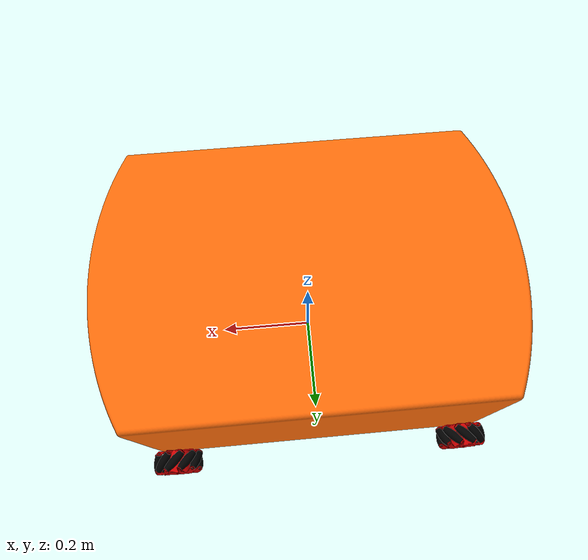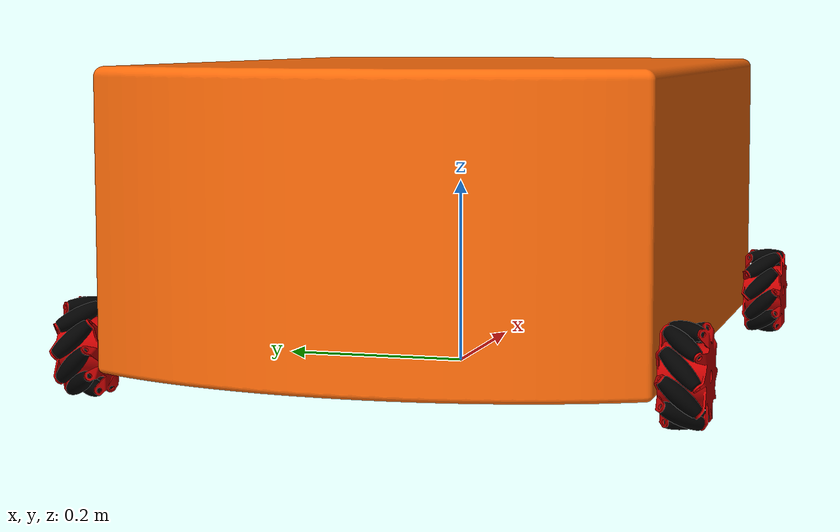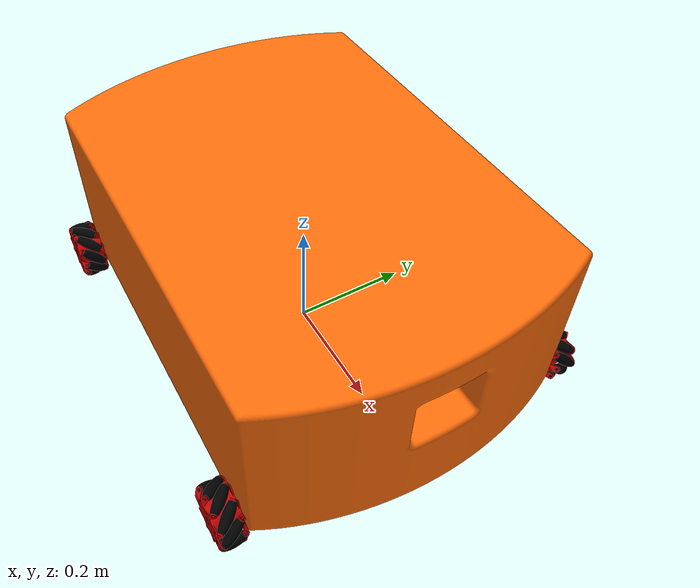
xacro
<?xml version="1.0"?>
<!-- Revolute-Revolute Manipulator -->
<robot name="ngws" xmlns:xacro="http://www.ros.org/wiki/xacro">

  <!-- Constants for robot dimensions -->
  <xacro:property name="PI" value="3.1415926535897931"/>
  <xacro:property name="mass" value="30" /> <!-- arbitrary value for mass -->
  <xacro:property name="width" value="0.6" /> <!-- Square dimensions (widthxwidth) of beams -->

  <!-- Import all Gazebo-customization elements, including Gazebo colors -->
  <xacro:include filename="$(find ngws_description)/urdf/gazebo/addon_v1.0.gazebo" />
  <!-- Import Rviz colors -->
  <xacro:include filename="$(find ngws_description)/urdf/materials/materials.xacro" />

  <xacro:include filename="$(find ngws_description)/urdf/mecanum_wheel/mecanum_wheel.xacro" />

  <!-- Used for fixing robot to Gazebo 'base_link' -->
    <!-- Used for fixing robot to Gazebo 'base_link' -->
  <link name="base_footprint"/>

  <joint name="base_joint" type="fixed">
    <origin xyz="0.0 0.0 0.03" rpy="0 0 0"/>
    <parent link="base_footprint"/>
    <child link="base_link"/>
  </joint>

  <!-- Base Link -->
  <link name="base_link">
    <collision>
      <origin xyz="0 0 0.15" rpy="0 0 0"/>
      <geometry>
        <mesh filename="package://ngws_description/meshes/cheshen.stl" scale="0.0008 0.0011 0.001"/>
      </geometry>
    </collision>

    <visual>
      <origin xyz="0 0 0.15" rpy="0 0 0"/>
      <geometry>
        <mesh filename="package://ngws_description/meshes/cheshen.stl" scale="0.0008 0.0011 0.001"/>
      </geometry>
      <material name="orange"/>
    </visual>

    <inertial>
      <origin xyz="0 0 0.1" rpy="0 0 0"/>
      <mass value="${mass}"/>
      <inertia
    ixx="${mass*0.083*2*width*width}" ixy="0.0" ixz="0.0"
    iyy="${mass*0.083*2*width*width}" iyz="0.0"
    izz="${mass*0.083*2*width*width}"/>
    </inertial>
  </link>

  <xacro:property name="mass_b" value="5" /> <!-- arbitrary value for mass -->

  <joint name="bridge1_joint" type="prismatic">
    <origin xyz="0 0 0" rpy="0 0 0"/>
    <parent link="base_link"/>
    <child link="bridge1_link"/>
    <axis xyz="0 0 1"/>
    <calibration rising="0.0"/>
    <dynamics damping="0.0" friction="0.0"/>
    <limit effort="0" velocity="0" lower="-0.03" upper="0.03"/>
  </joint>

  <link name="bridge1_link">
    <collision>
      <origin xyz="0.1 0.2 0.05" rpy="${PI*0.5} 0 0"/>
      <geometry>
        <cylinder radius="0.005" length="0.01" />
      </geometry>
    </collision>

    <collision>
      <origin xyz="0.1 -0.2 0.05" rpy="${PI*0.5} 0 0"/>
      <geometry>
        <cylinder radius="0.005" length="0.01" />
      </geometry>
    </collision>

    <visual>
      <origin xyz="0.1 0.2 0.05" rpy="${PI*0.5} 0 0"/>
      <geometry>
        <cylinder radius="0.005" length="0.01" />
      </geometry>
      <material name="orange"/>
    </visual>

    <visual>
      <origin xyz="0.1 -0.2 0.05" rpy="${PI*0.5} 0 0"/>
      <geometry>
        <cylinder radius="0.005" length="0.01" />
      </geometry>
      <material name="orange"/>
    </visual>

    <inertial>
      <origin xyz="0.1 0 0.05" rpy="${PI*0.5} 0 0"/>
      <mass value="${mass_b}"/>
      <inertia
    ixx="${mass_b*0.083*2*width*width}" ixy="0.0" ixz="0.0"
    iyy="${mass_b*0.083*2*width*width}" iyz="0.0"
    izz="${mass_b*0.083*2*width*width}"/>
    </inertial>

  </link>

  <joint name="bridge2_joint" type="prismatic">
    <origin xyz="0 0 0" rpy="0 0 0"/>
    <parent link="base_link"/>
    <child link="bridge2_link"/>
    <axis xyz="0 0 1"/>
    <calibration rising="0.0"/>
    <dynamics damping="0.0" friction="0.0"/>
    <limit effort="0" velocity="0" lower="-0.03" upper="0.03"/>
  </joint>

  <link name="bridge2_link">
    <collision>
      <origin xyz="-0.1 0.2 0.05" rpy="${PI*0.5} 0 0"/>
      <geometry>
        <cylinder radius="0.005" length="0.01" />
      </geometry>
    </collision>

    <collision>
      <origin xyz="-0.1 -0.2 0.05" rpy="${PI*0.5} 0 0"/>
      <geometry>
        <cylinder radius="0.005" length="0.01" />
      </geometry>
    </collision>

    <visual>
      <origin xyz="-0.1 0.2 0.05" rpy="${PI*0.5} 0 0"/>
      <geometry>
        <cylinder radius="0.005" length="0.01" />
      </geometry>
      <material name="orange"/>
    </visual>

    <visual>
      <origin xyz="-0.1 -0.2 0.05" rpy="${PI*0.5} 0 0"/>
      <geometry>
        <cylinder radius="0.005" length="0.01" />
      </geometry>
      <material name="orange"/>
    </visual>

    <inertial>
      <origin xyz="-0.1 0 0.05" rpy="${PI*0.5} 0 0"/>
      <mass value="${mass_b}"/>
      <inertia
    ixx="${mass_b*0.083*2*width*width}" ixy="0.0" ixz="0.0"
    iyy="${mass_b*0.083*2*width*width}" iyz="0.0"
    izz="${mass_b*0.083*2*width*width}"/>
    </inertial>

  </link>

  <joint name="bridge_m_joint" type="revolute">
    <origin xyz="0 0 0.065" rpy="0 0 0"/>
    <parent link="base_link"/>
    <child link="bridge_m_link"/>
    <axis xyz="0 1 0"/>
    <calibration rising="0.0"/>
    <dynamics damping="0.0" friction="0.0"/>
    <limit effort="0" velocity="0" lower="-0.2" upper="0.2"/>
  </joint>

  <link name="bridge_m_link">
    <collision>
      <origin xyz="0 0.2 0" rpy="${PI*0.5} 0 ${PI*0.5}"/>
      <geometry>
        <box size="0.01 0.01 0.25"/>
      </geometry>
    </collision>

    <collision>
      <origin xyz="0 -0.2 0" rpy="${PI*0.5} 0 ${PI*0.5}"/>
      <geometry>
        <box size="0.01 0.01 0.25"/>
      </geometry>
    </collision>

    <visual>
      <origin xyz="0 0.2 0" rpy="${PI*0.5} 0 ${PI*0.5}"/>
      <geometry>
        <box size="0.01 0.01 0.25"/>
      </geometry>
      <material name="orange"/>
    </visual>

    <visual>
      <origin xyz="0 -0.2 0" rpy="${PI*0.5} 0 ${PI*0.5}"/>
      <geometry>
        <box size="0.01 0.01 0.25"/>
      </geometry>
      <material name="orange"/>
    </visual>

    <inertial>
      <origin xyz="0 0 0" rpy="${PI*0.5} 0 ${PI*0.5}"/>
      <mass value="${mass_b}"/>
      <inertia
    ixx="${mass_b*0.083*2*width*width}" ixy="0.0" ixz="0.0"
    iyy="${mass_b*0.083*2*width*width}" iyz="0.0"
    izz="${mass_b*0.083*2*width*width}"/>
    </inertial>

  </link>

  <!-- subwheel -->
    <xacro:property name="wheel_mass" value="2"/>
    <xacro:property name="main_radius" value="0.041"/>
    <xacro:property name="caster" value="${PI*0.25}"/>

    <xacro:property name="main_mesh_file" value="package://ngws_description/meshes/mecanum_wheel.stl"/>
    <xacro:property name="main_mesh_file_rev" value="package://ngws_description/meshes/mecanum_wheel_r.stl"/>
    <xacro:property name="sub_mesh_file" value="package://ngws_description/meshes/mecanum_miniwheel_small.stl"/>

    <xacro:property name="wheel_T_offset" value="${PI/100*0}"/>

  <!-- FR -->
  <xacro:mecanum_wheel_macro
    name="wheel_FR"
    parent_link="bridge2_link"
    joint_type="continuous"
    mass="${wheel_mass}"
    has_10_subwheel="true"
    main_radius="${main_radius}"
    caster="${caster}"
    main_mesh_file="${main_mesh_file_rev}"
    sub_mesh_file="${sub_mesh_file}"
    mesh_scale="0.001"
    x="0.3"
    y="-0.3"
    z="0.02"
    R="${wheel_T_offset}"
    P="0.0"
    Y="${PI/2}"
    >
  </xacro:mecanum_wheel_macro>

<!-- FL -->

  <xacro:mecanum_wheel_macro
    name="wheel_FL"
    parent_link="bridge1_link"
    joint_type="continuous"
    mass="${wheel_mass}"
    has_10_subwheel="true"
    main_radius="${main_radius}"
    caster="-${caster}"
    main_mesh_file="${main_mesh_file}"
    sub_mesh_file="${sub_mesh_file}"
    mesh_scale="0.001"
    x="0.3"
    y="0.3"
    z="0.02"
    R="${wheel_T_offset}"
    P="0.0"
    Y="${PI/2}"
    >
  </xacro:mecanum_wheel_macro>

<!-- BR -->
  <xacro:mecanum_wheel_macro
    name="wheel_BR"
    parent_link="bridge1_link"
    joint_type="continuous"
    mass="${wheel_mass}"
    has_10_subwheel="true"
    main_radius="${main_radius}"
    caster="-${caster}"
    main_mesh_file="${main_mesh_file}"
    sub_mesh_file="${sub_mesh_file}"
    mesh_scale="0.001"
    x="-0.3"
    y="-0.3"
    z="0.02"
    R="${wheel_T_offset}"
    P="0.0"
    Y="${PI/2}"
    >
  </xacro:mecanum_wheel_macro>

<!-- BL -->
  <xacro:mecanum_wheel_macro
    name="wheel_BL"
    parent_link="bridge2_link"
    joint_type="continuous"
    mass="${wheel_mass}"
    has_10_subwheel="true"
    main_radius="${main_radius}"
    caster="${caster}"
    main_mesh_file="${main_mesh_file_rev}"
    sub_mesh_file="${sub_mesh_file}"
    mesh_scale="0.001"
    x="-0.3"
    y="0.3"
    z="0.02"
    R="${wheel_T_offset}"
    P="0.0"
    Y="${PI/2}"
    >
  </xacro:mecanum_wheel_macro>

  <!-- Wheel FR -->

  <!-- Wheel FL -->

<!-- Wheel BR -->

<!-- Wheel BL -->

  <!-- Laser -->

  <joint name="camera_joint" type="fixed">
    <axis xyz="0 1 0" />
    <origin xyz="0 0 0.2" rpy="0 ${PI/2.0} 0"/>
    <parent link="base_link"/>
    <child link="camera_link"/>
  </joint>

  <!-- Camera -->
  <link name="camera_link">
    <collision>
      <origin xyz="0 0 0" rpy="0 0 0"/>
      <geometry>
  <box size="0.06 0.06 0.06 "/>
      </geometry>
    </collision>

    <visual>
      <origin xyz="0 0 0" rpy="0 0 0"/>
      <geometry>
  <box size="0.06 0.06 0.06"/>
      </geometry>
      <material name="red"/>
    </visual>

    <inertial>
      <mass value="1e-5" />
      <origin xyz="0 0 0" rpy="0 0 0"/>
      <inertia ixx="1e-6" ixy="0" ixz="0" iyy="1e-6" iyz="0" izz="1e-6" />
    </inertial>
  </link>

  <transmission name="tran1">
    <type>transmission_interface/SimpleTransmission</type>
    <joint name="wheel_FR_joint">
      <hardwareInterface>VelocityJointInterface</hardwareInterface>
    </joint>
    <actuator name="motor1">
      <hardwareInterface>VelocityJointInterface</hardwareInterface>
      <mechanicalReduction>1</mechanicalReduction>
    </actuator>
  </transmission>

  <transmission name="tran2">
    <type>transmission_interface/SimpleTransmission</type>
    <joint name="wheel_FL_joint">
      <hardwareInterface>VelocityJointInterface</hardwareInterface>
    </joint>
    <actuator name="motor2">
      <hardwareInterface>VelocityJointInterface</hardwareInterface>
      <mechanicalReduction>1</mechanicalReduction>
    </actuator>
  </transmission>

  <transmission name="tran3">
    <type>transmission_interface/SimpleTransmission</type>
    <joint name="wheel_BR_joint">
      <hardwareInterface>VelocityJointInterface</hardwareInterface>
    </joint>
    <actuator name="motor3">
      <hardwareInterface>VelocityJointInterface</hardwareInterface>
      <mechanicalReduction>1</mechanicalReduction>
    </actuator>
  </transmission>

  <transmission name="tran4">
    <type>transmission_interface/SimpleTransmission</type>
    <joint name="wheel_BL_joint">
      <hardwareInterface>VelocityJointInterface</hardwareInterface>
    </joint>
    <actuator name="motor4">
      <hardwareInterface>VelocityJointInterface</hardwareInterface>
      <mechanicalReduction>1</mechanicalReduction>
    </actuator>
  </transmission>

</robot>

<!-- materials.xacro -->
<robot>

  <material name="black">
    <color rgba="0.0 0.0 0.0 1.0"/>
  </material>

  <material name="blue">
    <color rgba="0.0 0.0 0.8 1.0"/>
  </material>

  <material name="green">
    <color rgba="0.0 0.8 0.0 1.0"/>
  </material>

  <material name="grey">
    <color rgba="0.2 0.2 0.2 1.0"/>
  </material>

  <material name="orange">
    <color rgba="${255/255} ${108/255} ${10/255} 1.0"/>
  </material>

  <material name="brown">
    <color rgba="${222/255} ${207/255} ${195/255} 1.0"/>
  </material>

  <material name="red">
    <color rgba="0.8 0.0 0.0 1.0"/>
  </material>

  <material name="white">
    <color rgba="1.0 1.0 1.0 1.0"/>
  </material>

  <material name="alpha_red">
    <color rgba="0.8 0.0 0.0 0.2"/>
  </material>

</robot>

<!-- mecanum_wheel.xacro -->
<robot xmlns:xacro="http://ros.org/wiki/xacro">
  <xacro:macro name="mecanum_wheel_macro"
    params="name parent_link joint_type has_8_subwheel:=false has_10_subwheel:=false main_radius caster main_mesh_file sub_mesh_file mesh_scale mass x y z R P Y">

		<joint name="${name}_joint" type="${joint_type}">
	    <origin xyz="${x} ${y} ${z}" rpy="${R} ${P} ${Y}" />
	    <parent link="${parent_link}" />
	    <child link="${name}_link" />
	  </joint>

		<link name="${name}_link">
  		<collision>
        <origin xyz="0 0 0" rpy="0 ${PI/2.0} 0"/>
        <geometry>
          <cylinder length="0.02" radius="0.03"/>
        </geometry>
      </collision>

      <visual>
        <origin xyz="0 0 0" rpy="0 ${PI/2.0} 0"/>
        <geometry>
          <mesh filename="${main_mesh_file}" scale="${mesh_scale} ${mesh_scale} ${mesh_scale}"/>

        </geometry>
        <material name="red"/>
      </visual>

      <inertial>
        <mass value="${mass}" />
        <origin xyz="0 0 0" rpy="0 0 0"/>
          <inertia
          ixx="${mass*0.083*2*main_radius*main_radius}" ixy="0.0" ixz="0.0"
          iyy="${mass*0.083*2*main_radius*main_radius}" iyz="0.0"
          izz="${mass*0.083*2*main_radius*main_radius}"/>
      </inertial>
		</link>

    <xacro:if value="${has_10_subwheel}">
      <!--  sb1 -->
      <joint name="${name}_SA1_joint" type="fixed">
              <origin xyz="0 0 0" rpy="${PI*0.5} 0 0" />
              <parent link="${name}_link" />
              <child link="${name}_SA1_link" />
      </joint>
      <link name="${name}_SA1_link">
        <inertial>
          <mass value="${mass/20.0}" />
          <origin xyz="0 0 0" rpy="0 0 0"/>
            <inertia
          ixx="${mass*0.083*2*main_radius*main_radius/400}" ixy="0.0" ixz="0.0"
          iyy="${mass*0.083*2*main_radius*main_radius}" iyz="0.0"
          izz="${mass*0.083*2*main_radius*main_radius}"/>
        </inertial>
      </link>
      <joint name="${name}_SB1_joint" type="continuous">
              <origin xyz="0 ${main_radius} 0" rpy="0 ${caster} 0" />
              <parent link="${name}_SA1_link" />
              <child link="${name}_SB1_link" />
      </joint>

      <link name="${name}_SB1_link">
        <collision>
          <origin xyz="0 0 0" rpy="0 0 ${PI/2.0}"/>
          <geometry>
            <mesh filename="${sub_mesh_file}" scale="${mesh_scale} ${mesh_scale} ${mesh_scale}"/>
          </geometry>
        </collision>

        <visual>
          <origin xyz="0 0 0" rpy="0 0 ${PI/2.0}"/>
          <geometry>
            <mesh filename="${sub_mesh_file}" scale="${mesh_scale} ${mesh_scale} ${mesh_scale}"/>
          </geometry>
          <material name="black"/>
        </visual>

        <inertial>
          <mass value="${mass/10.0}" />
          <origin xyz="0 0 0" rpy="0 0 0"/>
            <inertia
          ixx="${mass*0.083*2*main_radius*main_radius/400}" ixy="0.0" ixz="0.0"
          iyy="${mass*0.083*2*main_radius*main_radius}" iyz="0.0"
          izz="${mass*0.083*2*main_radius*main_radius}"/>
        </inertial>
      </link>
      <!--  sb2 -->
      <joint name="${name}_SA2_joint" type="fixed">
              <origin xyz="0 0 0" rpy="${PI*(0.5+0.2)} 0 0" />
              <parent link="${name}_link" />
              <child link="${name}_SA2_link" />
      </joint>
      <link name="${name}_SA2_link">
        <inertial>
          <mass value="${mass/20.0}" />
          <origin xyz="0 0 0" rpy="0 0 0"/>
            <inertia
          ixx="${mass*0.083*2*main_radius*main_radius/400}" ixy="0.0" ixz="0.0"
          iyy="${mass*0.083*2*main_radius*main_radius}" iyz="0.0"
          izz="${mass*0.083*2*main_radius*main_radius}"/>
        </inertial>
      </link>
      <joint name="${name}_SB2_joint" type="continuous">
              <origin xyz="0 ${main_radius} 0" rpy="0 ${caster} 0" />
              <parent link="${name}_SA2_link" />
              <child link="${name}_SB2_link" />
      </joint>

      <link name="${name}_SB2_link">
        <collision>
          <origin xyz="0 0 0" rpy="0 0 ${PI/2.0}"/>
          <geometry>
            <mesh filename="${sub_mesh_file}" scale="${mesh_scale} ${mesh_scale} ${mesh_scale}"/>
          </geometry>
        </collision>

        <visual>
          <origin xyz="0 0 0" rpy="0 0 ${PI/2.0}"/>
          <geometry>
            <mesh filename="${sub_mesh_file}" scale="${mesh_scale} ${mesh_scale} ${mesh_scale}"/>
          </geometry>
          <material name="black"/>
        </visual>

        <inertial>
          <mass value="${mass/10.0}" />
          <origin xyz="0 0 0" rpy="0 0 0"/>
            <inertia
          ixx="${mass*0.083*2*main_radius*main_radius/400}" ixy="0.0" ixz="0.0"
          iyy="${mass*0.083*2*main_radius*main_radius}" iyz="0.0"
          izz="${mass*0.083*2*main_radius*main_radius}"/>
        </inertial>
      </link>
<!--  sb3 -->
      <joint name="${name}_SA3_joint" type="fixed">
              <origin xyz="0 0 0" rpy="${PI*(0.5+0.4)} 0 0" />
              <parent link="${name}_link" />
              <child link="${name}_SA3_link" />
      </joint>
      <link name="${name}_SA3_link">
        <inertial>
          <mass value="${mass/20.0}" />
          <origin xyz="0 0 0" rpy="0 0 0"/>
            <inertia
          ixx="${mass*0.083*2*main_radius*main_radius/400}" ixy="0.0" ixz="0.0"
          iyy="${mass*0.083*2*main_radius*main_radius}" iyz="0.0"
          izz="${mass*0.083*2*main_radius*main_radius}"/>
        </inertial>
      </link>
      <joint name="${name}_SB3_joint" type="continuous">
              <origin xyz="0 ${main_radius} 0" rpy="0 ${caster} 0" />
              <parent link="${name}_SA3_link" />
              <child link="${name}_SB3_link" />
      </joint>

      <link name="${name}_SB3_link">
        <collision>
          <origin xyz="0 0 0" rpy="0 0 ${PI/2.0}"/>
          <geometry>
            <mesh filename="${sub_mesh_file}" scale="${mesh_scale} ${mesh_scale} ${mesh_scale}"/>
          </geometry>
        </collision>

        <visual>
          <origin xyz="0 0 0" rpy="0 0 ${PI/2.0}"/>
          <geometry>
            <mesh filename="${sub_mesh_file}" scale="${mesh_scale} ${mesh_scale} ${mesh_scale}"/>
          </geometry>
          <material name="black"/>
        </visual>

        <inertial>
          <mass value="${mass/10.0}" />
          <origin xyz="0 0 0" rpy="0 0 0"/>
            <inertia
          ixx="${mass*0.083*2*main_radius*main_radius/400}" ixy="0.0" ixz="0.0"
          iyy="${mass*0.083*2*main_radius*main_radius}" iyz="0.0"
          izz="${mass*0.083*2*main_radius*main_radius}"/>
        </inertial>
      </link>
    <!--  sb4 -->
      <joint name="${name}_SA4_joint" type="fixed">
              <origin xyz="0 0 0" rpy="${PI*(0.5+0.6)} 0 0" />
              <parent link="${name}_link" />
              <child link="${name}_SA4_link" />
      </joint>
      <link name="${name}_SA4_link">
        <inertial>
          <mass value="${mass/20.0}" />
          <origin xyz="0 0 0" rpy="0 0 0"/>
            <inertia
          ixx="${mass*0.083*2*main_radius*main_radius/400}" ixy="0.0" ixz="0.0"
          iyy="${mass*0.083*2*main_radius*main_radius}" iyz="0.0"
          izz="${mass*0.083*2*main_radius*main_radius}"/>
        </inertial>
      </link>
      <joint name="${name}_SB4_joint" type="continuous">
              <origin xyz="0 ${main_radius} 0" rpy="0 ${caster} 0" />
              <parent link="${name}_SA4_link" />
              <child link="${name}_SB4_link" />
      </joint>

      <link name="${name}_SB4_link">
        <collision>
          <origin xyz="0 0 0" rpy="0 0 ${PI/2.0}"/>
          <geometry>
            <mesh filename="${sub_mesh_file}" scale="${mesh_scale} ${mesh_scale} ${mesh_scale}"/>
          </geometry>
        </collision>

        <visual>
          <origin xyz="0 0 0" rpy="0 0 ${PI/2.0}"/>
          <geometry>
            <mesh filename="${sub_mesh_file}" scale="${mesh_scale} ${mesh_scale} ${mesh_scale}"/>
          </geometry>
          <material name="black"/>
        </visual>

        <inertial>
          <mass value="${mass/10.0}" />
          <origin xyz="0 0 0" rpy="0 0 0"/>
            <inertia
          ixx="${mass*0.083*2*main_radius*main_radius/400}" ixy="0.0" ixz="0.0"
          iyy="${mass*0.083*2*main_radius*main_radius}" iyz="0.0"
          izz="${mass*0.083*2*main_radius*main_radius}"/>
        </inertial>
      </link>
     <!--  sb5 -->
      <joint name="${name}_SA5_joint" type="fixed">
              <origin xyz="0 0 0" rpy="${PI*(0.5+0.8)} 0 0" />
              <parent link="${name}_link" />
              <child link="${name}_SA5_link" />
      </joint>
      <link name="${name}_SA5_link">
        <inertial>
          <mass value="${mass/20.0}" />
          <origin xyz="0 0 0" rpy="0 0 0"/>
            <inertia
          ixx="${mass*0.083*2*main_radius*main_radius/400}" ixy="0.0" ixz="0.0"
          iyy="${mass*0.083*2*main_radius*main_radius}" iyz="0.0"
          izz="${mass*0.083*2*main_radius*main_radius}"/>
        </inertial>
      </link>
      <joint name="${name}_SB5_joint" type="continuous">
              <origin xyz="0 ${main_radius} 0" rpy="0 ${caster} 0" />
              <parent link="${name}_SA5_link" />
              <child link="${name}_SB5_link" />
      </joint>

      <link name="${name}_SB5_link">
        <collision>
          <origin xyz="0 0 0" rpy="0 0 ${PI/2.0}"/>
          <geometry>
            <mesh filename="${sub_mesh_file}" scale="${mesh_scale} ${mesh_scale} ${mesh_scale}"/>
          </geometry>
        </collision>

        <visual>
          <origin xyz="0 0 0" rpy="0 0 ${PI/2.0}"/>
          <geometry>
            <mesh filename="${sub_mesh_file}" scale="${mesh_scale} ${mesh_scale} ${mesh_scale}"/>
          </geometry>
          <material name="black"/>
        </visual>

        <inertial>
          <mass value="${mass/10.0}" />
          <origin xyz="0 0 0" rpy="0 0 0"/>
            <inertia
          ixx="${mass*0.083*2*main_radius*main_radius/400}" ixy="0.0" ixz="0.0"
          iyy="${mass*0.083*2*main_radius*main_radius}" iyz="0.0"
          izz="${mass*0.083*2*main_radius*main_radius}"/>
        </inertial>
      </link>
        <!--  sb6 -->
      <joint name="${name}_SA6_joint" type="fixed">
              <origin xyz="0 0 0" rpy="${PI*(0.5+1.0)} 0 0" />
              <parent link="${name}_link" />
              <child link="${name}_SA6_link" />
      </joint>
      <link name="${name}_SA6_link">
        <inertial>
          <mass value="${mass/20.0}" />
          <origin xyz="0 0 0" rpy="0 0 0"/>
            <inertia
          ixx="${mass*0.083*2*main_radius*main_radius/400}" ixy="0.0" ixz="0.0"
          iyy="${mass*0.083*2*main_radius*main_radius}" iyz="0.0"
          izz="${mass*0.083*2*main_radius*main_radius}"/>
        </inertial>
      </link>
      <joint name="${name}_SB6_joint" type="continuous">
              <origin xyz="0 ${main_radius} 0" rpy="0 ${caster} 0" />
              <parent link="${name}_SA6_link" />
              <child link="${name}_SB6_link" />
      </joint>

      <link name="${name}_SB6_link">
        <collision>
          <origin xyz="0 0 0" rpy="0 0 ${PI/2.0}"/>
          <geometry>
            <mesh filename="${sub_mesh_file}" scale="${mesh_scale} ${mesh_scale} ${mesh_scale}"/>
          </geometry>
        </collision>

        <visual>
          <origin xyz="0 0 0" rpy="0 0 ${PI/2.0}"/>
          <geometry>
            <mesh filename="${sub_mesh_file}" scale="${mesh_scale} ${mesh_scale} ${mesh_scale}"/>
          </geometry>
          <material name="black"/>
        </visual>

        <inertial>
          <mass value="${mass/10.0}" />
          <origin xyz="0 0 0" rpy="0 0 0"/>
            <inertia
          ixx="${mass*0.083*2*main_radius*main_radius/400}" ixy="0.0" ixz="0.0"
          iyy="${mass*0.083*2*main_radius*main_radius}" iyz="0.0"
          izz="${mass*0.083*2*main_radius*main_radius}"/>
        </inertial>
      </link>
        <!--  sb7 -->
      <joint name="${name}_SA7_joint" type="fixed">
              <origin xyz="0 0 0" rpy="${PI*(0.5+1.2)} 0 0" />
              <parent link="${name}_link" />
              <child link="${name}_SA7_link" />
      </joint>
      <link name="${name}_SA7_link">
        <inertial>
          <mass value="${mass/20.0}" />
          <origin xyz="0 0 0" rpy="0 0 0"/>
            <inertia
          ixx="${mass*0.083*2*main_radius*main_radius/400}" ixy="0.0" ixz="0.0"
          iyy="${mass*0.083*2*main_radius*main_radius}" iyz="0.0"
          izz="${mass*0.083*2*main_radius*main_radius}"/>
        </inertial>
      </link>
      <joint name="${name}_SB7_joint" type="continuous">
              <origin xyz="0 ${main_radius} 0" rpy="0 ${caster} 0" />
              <parent link="${name}_SA7_link" />
              <child link="${name}_SB7_link" />
      </joint>

      <link name="${name}_SB7_link">
        <collision>
          <origin xyz="0 0 0" rpy="0 0 ${PI/2.0}"/>
          <geometry>
            <mesh filename="${sub_mesh_file}" scale="${mesh_scale} ${mesh_scale} ${mesh_scale}"/>
          </geometry>
        </collision>

        <visual>
          <origin xyz="0 0 0" rpy="0 0 ${PI/2.0}"/>
          <geometry>
            <mesh filename="${sub_mesh_file}" scale="${mesh_scale} ${mesh_scale} ${mesh_scale}"/>
          </geometry>
          <material name="black"/>
        </visual>

        <inertial>
          <mass value="${mass/10.0}" />
          <origin xyz="0 0 0" rpy="0 0 0"/>
            <inertia
          ixx="${mass*0.083*2*main_radius*main_radius/400}" ixy="0.0" ixz="0.0"
          iyy="${mass*0.083*2*main_radius*main_radius}" iyz="0.0"
          izz="${mass*0.083*2*main_radius*main_radius}"/>
        </inertial>
      </link>
      <!--  sb8 -->
      <joint name="${name}_SA8_joint" type="fixed">
              <origin xyz="0 0 0" rpy="${PI*(0.5+1.4)} 0 0" />
              <parent link="${name}_link" />
              <child link="${name}_SA8_link" />
      </joint>
      <link name="${name}_SA8_link">
        <inertial>
          <mass value="${mass/20.0}" />
          <origin xyz="0 0 0" rpy="0 0 0"/>
            <inertia
          ixx="${mass*0.083*2*main_radius*main_radius/400}" ixy="0.0" ixz="0.0"
          iyy="${mass*0.083*2*main_radius*main_radius}" iyz="0.0"
          izz="${mass*0.083*2*main_radius*main_radius}"/>
        </inertial>
      </link>
      <joint name="${name}_SB8_joint" type="continuous">
              <origin xyz="0 ${main_radius} 0" rpy="0 ${caster} 0" />
              <parent link="${name}_SA8_link" />
              <child link="${name}_SB8_link" />
      </joint>

      <link name="${name}_SB8_link">
        <collision>
          <origin xyz="0 0 0" rpy="0 0 ${PI/2.0}"/>
          <geometry>
            <mesh filename="${sub_mesh_file}" scale="${mesh_scale} ${mesh_scale} ${mesh_scale}"/>
          </geometry>
        </collision>

        <visual>
          <origin xyz="0 0 0" rpy="0 0 ${PI/2.0}"/>
          <geometry>
            <mesh filename="${sub_mesh_file}" scale="${mesh_scale} ${mesh_scale} ${mesh_scale}"/>
          </geometry>
          <material name="black"/>
        </visual>

        <inertial>
          <mass value="${mass/10.0}" />
          <origin xyz="0 0 0" rpy="0 0 0"/>
            <inertia
          ixx="${mass*0.083*2*main_radius*main_radius/400}" ixy="0.0" ixz="0.0"
          iyy="${mass*0.083*2*main_radius*main_radius}" iyz="0.0"
          izz="${mass*0.083*2*main_radius*main_radius}"/>
        </inertial>
      </link>
  <!--  sb9 -->
      <joint name="${name}_SA9_joint" type="fixed">
              <origin xyz="0 0 0" rpy="${PI*(0.5+1.6)} 0 0" />
              <parent link="${name}_link" />
              <child link="${name}_SA9_link" />
      </joint>
      <link name="${name}_SA9_link">
        <inertial>
          <mass value="${mass/20.0}" />
          <origin xyz="0 0 0" rpy="0 0 0"/>
            <inertia
          ixx="${mass*0.083*2*main_radius*main_radius/400}" ixy="0.0" ixz="0.0"
          iyy="${mass*0.083*2*main_radius*main_radius}" iyz="0.0"
          izz="${mass*0.083*2*main_radius*main_radius}"/>
        </inertial>
      </link>
      <joint name="${name}_SB9_joint" type="continuous">
              <origin xyz="0 ${main_radius} 0" rpy="0 ${caster} 0" />
              <parent link="${name}_SA9_link" />
              <child link="${name}_SB9_link" />
      </joint>

      <link name="${name}_SB9_link">
        <collision>
          <origin xyz="0 0 0" rpy="0 0 ${PI/2.0}"/>
          <geometry>
            <mesh filename="${sub_mesh_file}" scale="${mesh_scale} ${mesh_scale} ${mesh_scale}"/>
          </geometry>
        </collision>

        <visual>
          <origin xyz="0 0 0" rpy="0 0 ${PI/2.0}"/>
          <geometry>
            <mesh filename="${sub_mesh_file}" scale="${mesh_scale} ${mesh_scale} ${mesh_scale}"/>
          </geometry>
          <material name="black"/>
        </visual>

        <inertial>
          <mass value="${mass/10.0}" />
          <origin xyz="0 0 0" rpy="0 0 0"/>
            <inertia
          ixx="${mass*0.083*2*main_radius*main_radius/400}" ixy="0.0" ixz="0.0"
          iyy="${mass*0.083*2*main_radius*main_radius}" iyz="0.0"
          izz="${mass*0.083*2*main_radius*main_radius}"/>
        </inertial>
      </link>
      <!--  sb10 -->
      <joint name="${name}_SA10_joint" type="fixed">
              <origin xyz="0 0 0" rpy="${PI*(0.5+1.8)} 0 0" />
              <parent link="${name}_link" />
              <child link="${name}_SA10_link" />
      </joint>
      <link name="${name}_SA10_link">
        <inertial>
          <mass value="${mass/20.0}" />
          <origin xyz="0 0 0" rpy="0 0 0"/>
            <inertia
          ixx="${mass*0.083*2*main_radius*main_radius/400}" ixy="0.0" ixz="0.0"
          iyy="${mass*0.083*2*main_radius*main_radius}" iyz="0.0"
          izz="${mass*0.083*2*main_radius*main_radius}"/>
        </inertial>
      </link>
      <joint name="${name}_SB10_joint" type="continuous">
              <origin xyz="0 ${main_radius} 0" rpy="0 ${caster} 0" />
              <parent link="${name}_SA10_link" />
              <child link="${name}_SB10_link" />
      </joint>

      <link name="${name}_SB10_link">
        <collision>
          <origin xyz="0 0 0" rpy="0 0 ${PI/2.0}"/>
          <geometry>
            <mesh filename="${sub_mesh_file}" scale="${mesh_scale} ${mesh_scale} ${mesh_scale}"/>
          </geometry>
        </collision>

        <visual>
          <origin xyz="0 0 0" rpy="0 0 ${PI/2.0}"/>
          <geometry>
            <mesh filename="${sub_mesh_file}" scale="${mesh_scale} ${mesh_scale} ${mesh_scale}"/>
          </geometry>
          <material name="black"/>
        </visual>

        <inertial>
          <mass value="${mass/10.0}" />
          <origin xyz="0 0 0" rpy="0 0 0"/>
            <inertia
          ixx="${mass*0.083*2*main_radius*main_radius/400}" ixy="0.0" ixz="0.0"
          iyy="${mass*0.083*2*main_radius*main_radius}" iyz="0.0"
          izz="${mass*0.083*2*main_radius*main_radius}"/>
        </inertial>
      </link>
    </xacro:if>

  </xacro:macro>
</robot>
